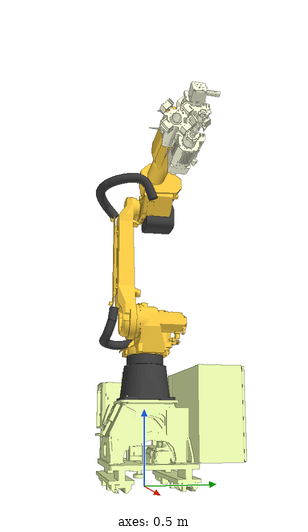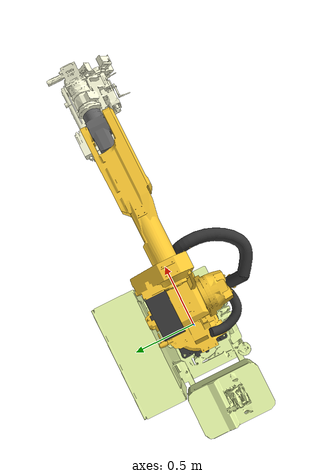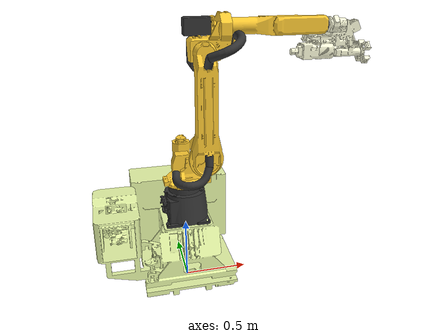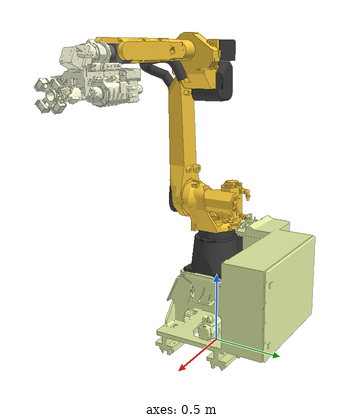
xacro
<?xml version="1.0"?>
<robot xmlns:xacro="http://www.ros.org/wiki/xacro" name="fanuc_m20ia_35m">
    <xacro:arg name="initial_positions_file" default="initial_positions.yaml" />
    <xacro:arg name="initial_velocities_file" default="initial_velocities.yaml" />
    <xacro:arg name="initial_efforts_file" default="initial_efforts.yaml" />
    <xacro:arg name="command_interface" default="position" />
    <xacro:arg name="use_mock_hardware" default="true" />
    <xacro:arg name="ros2_controllers_path" default="$(find acg_resources_fanuc_m20ia_35m_moveit_config)/config/ros2_controllers.yaml" />

    <!-- Import fanuc_m20ia_35m urdf file -->
    <xacro:include filename="$(find acg_resources_fanuc_m20ia_35m_description)/urdf/fanuc_m20ia_35m.urdf" />

    <!-- Import control_xacro -->
    <xacro:include filename="$(find acg_resources_fanuc_m20ia_35m_moveit_config)/config/fanuc_m20ia_35m.ros2_control.xacro" />

    <xacro:fanuc_m20ia_35m_ros2_control
        name="FakeSystem"
        initial_positions_file="$(arg initial_positions_file)"
        initial_velocities_file="$(arg initial_velocities_file)"
        initial_efforts_file="$(arg initial_efforts_file)"
        command_interface="$(arg command_interface)"
        use_mock_hardware="$(arg use_mock_hardware)"
        ros2_controllers_path="$(arg ros2_controllers_path)"/>

</robot>

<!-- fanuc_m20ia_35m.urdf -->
<robot name="fanuc_m20ia_35m">
    <!--World link represents the world origin-->
    <link name="world" />
    <!--Sliding base-->
    <link name="slider">
        <visual>
            <origin xyz="0 -0.138929 -0.156011" rpy="3.14159265359 -1.57079632679 0" />
            <geometry>
                <mesh filename="package://acg_resources_fanuc_m20ia_35m_description/meshes/visual/slide.dae" />
            </geometry>
        </visual>
        <inertial>
            <inertia ixx="5.44696" ixy="0.41618" ixz="0.42316" iyy="4.52204" iyz="1.14567" izz="3.50858"/>
            <origin rpy="0.00000 0.00000 0.00000" xyz="0.38559 -0.12582 -0.14714"/>
            <mass value="40.00000"/>
        </inertial>
        <collision>
            <origin xyz="0 -0.138929 -0.156011" rpy="3.14159265359 -1.57079632679 0" />
            <geometry>
                <mesh filename="package://acg_resources_fanuc_m20ia_35m_description/meshes/collision/slide_alt.stl" />
            </geometry>
        </collision>
    </link>
    <joint name="fanuc_m20ia_35m_world_to_silder" type="prismatic">
        <origin xyz="0 0 0" rpy="3.14159265359 -1.57079632679 0" />
        <parent link="world" />
        <child link="slider" />
        <axis xyz="0 0 1" />
        <dynamics damping="12.6" friction="1.8"/>
        <limit effort="3500" velocity="9.6" lower="-2.1" upper="2.1" /><axis xyz="0 0 1" />
    </joint>
    <joint name="fanuc_m20ia_35m_slider_to_link_0" type="fixed">
        <origin xyz="0.555985 0 0" rpy="3.14159265359 -1.57079632679 0" />
        <parent link="slider" />
        <child link="fanuc_m20ia_35m_link_0" />
    </joint>
    <!--Fanuc M20IA/35M-->
    <link name="fanuc_m20ia_35m_link_0">
        <visual>
            <origin xyz="0 0 0" rpy="0 0 0" />
            <geometry>
                <mesh filename="package://acg_resources_fanuc_m20ia_35m_description/meshes/visual/link_0.dae" />
            </geometry>
        </visual>
        <inertial>
            <inertia ixx="0.81917" ixy="0.11076" ixz="-0.15612" iyy="1.46533" iyz="0.02762" izz="1.37957"/>
            <origin rpy="0.00000 0.00000 0.00000" xyz="-0.01251 0.00295 0.13601"/>
            <mass value="55.00000"/>
        </inertial>
        <collision>
            <origin xyz="0 0 0" rpy="0 0 0" />
            <geometry>
                <mesh filename="package://acg_resources_fanuc_m20ia_35m_description/meshes/collision/link_0.stl" />
            </geometry>
        </collision>
    </link>
    <link name="fanuc_m20ia_35m_link_1">
        <visual>
            <origin xyz="0 0 0" rpy="0 0 0" />
            <geometry>
                <mesh filename="package://acg_resources_fanuc_m20ia_35m_description/meshes/visual/link_1.dae" />
            </geometry>
        </visual>
        <inertial>
            <inertia ixx="1.94274" ixy="-0.00021" ixz="-0.20819" iyy="1.01606" iyz="-0.20086" izz="2.07922"/>
            <origin rpy="0.00000 0.00000 0.00000" xyz="0.05707 0.00452 0.44717"/>
            <mass value="76.00000"/>
        </inertial>
        <collision>
            <origin xyz="0 0 0" rpy="0 0 0" />
            <geometry>
                <mesh filename="package://acg_resources_fanuc_m20ia_35m_description/meshes/collision/link_1.stl" />
            </geometry>
        </collision>
    </link>
    <joint name="fanuc_m20ia_35m_joint_1" type="revolute">
        <origin xyz="0 0 0" rpy="0 0 0" />
        <parent link="fanuc_m20ia_35m_link_0" />
        <child link="fanuc_m20ia_35m_link_1" />
        <axis xyz="0 0 1" />
        <dynamics damping="7.11" friction="1.2"/>
        <limit effort="2500" velocity="3.14" lower="-3.228859" upper="3.228859" />
    </joint>
    <link name="fanuc_m20ia_35m_link_2">
        <visual>
            <origin xyz="-0.150 -0.525 0" rpy="-1.57079632679 0 0" />
            <geometry>
                <mesh filename="package://acg_resources_fanuc_m20ia_35m_description/meshes/visual/link_2.dae" />
            </geometry>
        </visual>
        <inertial>
            <inertia ixx="2.43002" ixy="0.00148" ixz="0.00311" iyy="0.13838" iyz="-0.02449" izz="2.42037"/>
            <origin rpy="0.00000 0.00000 0.00000" xyz="0.00001 0.33455 0.17707"/>
            <mass value="31.90000"/>
        </inertial>
        <collision>
            <origin xyz="-0.150 -0.525 0" rpy="-1.57079632679 0 0" />
            <geometry>
                <mesh filename="package://acg_resources_fanuc_m20ia_35m_description/meshes/collision/link_2.stl" />
            </geometry>
        </collision>
    </link>
    <joint name="fanuc_m20ia_35m_joint_2" type="revolute">
        <origin xyz="0.150 0 0.525" rpy="1.57079632679 0 0" />
        <parent link="fanuc_m20ia_35m_link_1" />
        <child link="fanuc_m20ia_35m_link_2" />
        <axis xyz="0 0 -1" />
        <dynamics damping="7.11" friction="1.2"/>
        <limit effort="2500" velocity="3.14" lower="-1.745329" upper="2.792527" />
    </joint>
    <link name="fanuc_m20ia_35m_link_3">
        <visual>
            <origin xyz="-1.315 0.150 0" rpy="-1.57079632679 0 -1.57079632679" />
            <geometry>
                <mesh filename="package://acg_resources_fanuc_m20ia_35m_description/meshes/visual/link_3.dae" />
            </geometry>
        </visual>
        <inertial>
            <inertia ixx="0.97807" ixy="0.09333" ixz="0.00172" iyy="1.00014" iyz="0.17372" izz="0.82790"/>
            <origin rpy="0.00000 0.00000 0.00000" xyz="0.05077 -0.05726 -0.02988"/>
            <mass value="52.00000"/>
        </inertial>
        <collision>
            <origin xyz="-1.315 0.150 0" rpy="-1.57079632679 0 -1.57079632679" />
            <geometry>
                <mesh filename="package://acg_resources_fanuc_m20ia_35m_description/meshes/collision/link_3.stl" />
            </geometry>
        </collision>
    </link>
    <joint name="fanuc_m20ia_35m_joint_3" type="revolute">
        <origin xyz="0 0.790 0" rpy="0 0 1.57079632679" />
        <parent link="fanuc_m20ia_35m_link_2" />
        <child link="fanuc_m20ia_35m_link_3" />
        <axis xyz="0 0 1" />
        <dynamics damping="4.778" friction="0.8"/>
        <limit effort="2000" velocity="3.49" lower="-3.228859" upper="4.766494" />
    </joint>
    <link name="fanuc_m20ia_35m_link_4">
        <visual>
            <origin xyz="-1.456 0 -0.150" rpy="3.14159265359 -1.57079632679 0" />
            <geometry>
                <mesh filename="package://acg_resources_fanuc_m20ia_35m_description/meshes/visual/link_4.dae" />
            </geometry>
        </visual>
        <inertial>
            <inertia ixx="1.14714" ixy="0.00333" ixz="0.01779" iyy="1.11650" iyz="-0.07292" izz="0.08602"/>
            <origin rpy="0.00000 0.00000 0.00000" xyz="0.00918 0.00056 0.55457"/>
            <mass value="27.40000"/>
        </inertial>
        <collision>
            <origin xyz="-1.456 0 -0.150" rpy="3.14159265359 -1.57079632679 0" />
            <geometry>
                <mesh filename="package://acg_resources_fanuc_m20ia_35m_description/meshes/collision/link_4.stl" />
            </geometry>
        </collision>
    </link>
    <joint name="fanuc_m20ia_35m_joint_4" type="revolute">
        <origin xyz="0.150 0 0" rpy="1.57079632679 0 0" />
        <parent link="fanuc_m20ia_35m_link_3" />
        <child link="fanuc_m20ia_35m_link_4" />
        <axis xyz="0 0 -1" />
        <dynamics damping="2.6696" friction="0.8"/>
        <limit effort="110" velocity="6.11" lower="-3.490659" upper="3.490659" />
    </joint>
    <link name="fanuc_m20ia_35m_link_5">
        <visual>
            <origin xyz="-1.465 1.010 0" rpy="-1.57079632679 0 -1.57079632679" />
            <geometry>
                <mesh filename="package://acg_resources_fanuc_m20ia_35m_description/meshes/visual/link_5.dae" />
            </geometry>
        </visual>
        <inertial>
            <inertia ixx="0.05943" ixy="0.00359" ixz="-0.00004" iyy="0.01101" iyz="0.00036" izz="0.06008"/>
            <origin rpy="0.00000 0.00000 0.00000" xyz="-0.00391 -0.00260 -0.00199"/>
            <mass value="9.40000"/>
        </inertial>
        <collision>
            <origin xyz="-1.465 1.010 0" rpy="-1.57079632679 0 -1.57079632679" />
            <geometry>
                <mesh filename="package://acg_resources_fanuc_m20ia_35m_description/meshes/collision/link_5.stl" />
            </geometry>
        </collision>
    </link>
    <joint name="fanuc_m20ia_35m_joint_5" type="revolute">
        <origin xyz="0 0 0.860" rpy="-1.57079632679 0 0" />
        <parent link="fanuc_m20ia_35m_link_4" />
        <child link="fanuc_m20ia_35m_link_5" />
        <dynamics damping="0.53169" friction="0.3"/>
        <axis xyz="0 0 1" />
        <limit effort="110" velocity="6.11" lower="-2.443461" upper="2.443461" />
    </joint>
    <link name="fanuc_m20ia_35m_link_6">
        <visual>
            <origin xyz="0 0 0.100" rpy="0 0 0" />
            <geometry>
                <mesh filename="package://acg_resources_fanuc_m20ia_35m_description/meshes/visual/link_6.dae" />
            </geometry>
        </visual>
        <inertial>
            <inertia ixx="0.00005" ixy="-0.00000" ixz="-0.00000" iyy="0.00005" iyz="0.00000" izz="0.00009"/>
            <origin rpy="0.00000 0.00000 0.00000" xyz="0.00000 0.00000 0.10000"/>
            <mass value="0.30000"/>
        </inertial>
        <collision>
            <origin xyz="0 0 0.100" rpy="0 0 0" />
            <geometry>
                <mesh filename="package://acg_resources_fanuc_m20ia_35m_description/meshes/collision/link_6.stl" />
            </geometry>
        </collision>
    </link>
    <joint name="fanuc_m20ia_35m_joint_6" type="revolute">
        <origin xyz="0 0 0" rpy="1.57079632679 0 0" />
        <parent link="fanuc_m20ia_35m_link_5" />
        <child link="fanuc_m20ia_35m_link_6" />
        <axis xyz="0 0 -1" />
        <dynamics damping="0.53169" friction="0.3"/>
        <limit effort="60" velocity="6.98" lower="-7.853982" upper="7.853982" />
    </joint>
    <link name="fanuc_m20ia_35m_flange">
    </link>
    <joint name="fanuc_m20ia_35m_joint_7" type="fixed">
        <origin xyz="0 0 0.100" rpy="0 0 0" />
        <parent link="fanuc_m20ia_35m_link_6" />
        <child link="fanuc_m20ia_35m_flange" />
    </joint>
    <!--End effector-->
    <link name="fanuc_m20ia_35m_drilling_tool">
        <visual>
            <origin xyz="-1.26508 -0.01635 -1.447666" rpy="-1.5446 0 -1.5429" />
            <!--The mesh is not aligned with its frame. This rotation was calculated by means of rotation matrices.-->
            <geometry>
                <mesh filename="package://acg_resources_fanuc_m20ia_35m_description/meshes/visual/drilling_tool.dae" />
            </geometry>
        </visual>
        <inertial>
            <inertia ixx="0.27100" ixy="0.01440" ixz="-0.01671" iyy="0.28542" iyz="-0.04531" izz="0.10477"/>
            <origin rpy="0.00000 0.00000 0.00000" xyz="0.06258 0.01824 -0.25703"/>
            <mass value="15.00000"/>
        </inertial>
        <collision>
            <origin xyz="-1.26508 -0.01635 -1.447666" rpy="-1.5446 0 -1.5429" />
            <!--The mesh is not aligned with its frame. This rotation was calculated by means of rotation matrices.-->
            <geometry>
                <mesh filename="package://acg_resources_fanuc_m20ia_35m_description/meshes/collision/drilling_tool_alt.stl" />
            </geometry>
        </collision>
    </link>
    <link name="fanuc_m20ia_35m_inspection_tool">
        <!--The mesh of this tool is already part of the drilling tool mesh
        the inertial tag is has been inserted on the drilling_tool-->
    </link>
    <joint name="fanuc_m20ia_35m_flange_to_drilling_tool" type="fixed">
        <origin xyz="-0.18992 0 0.29979" rpy="0 0 0" />
        <parent link="fanuc_m20ia_35m_flange" />
        <child link="fanuc_m20ia_35m_drilling_tool" />
    </joint>
    <joint name="fanuc_m20ia_35m_flange_to_inspection_tool" type="fixed">
        <origin xyz="-0.19047 0.1145 0.26656" rpy="0 0 0" />
        <parent link="fanuc_m20ia_35m_flange" />
        <child link="fanuc_m20ia_35m_inspection_tool" />
    </joint>
</robot>
